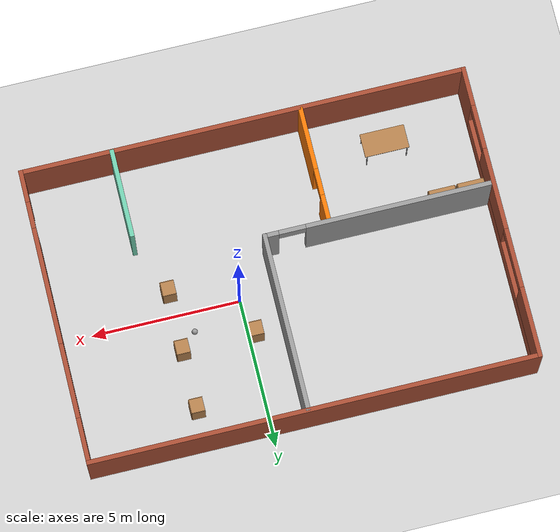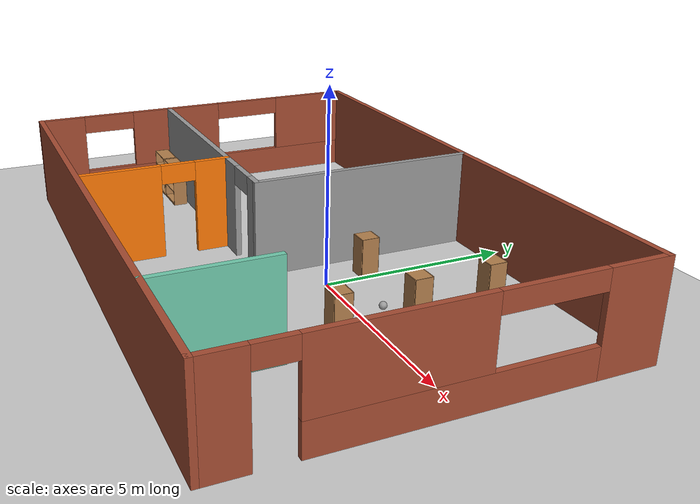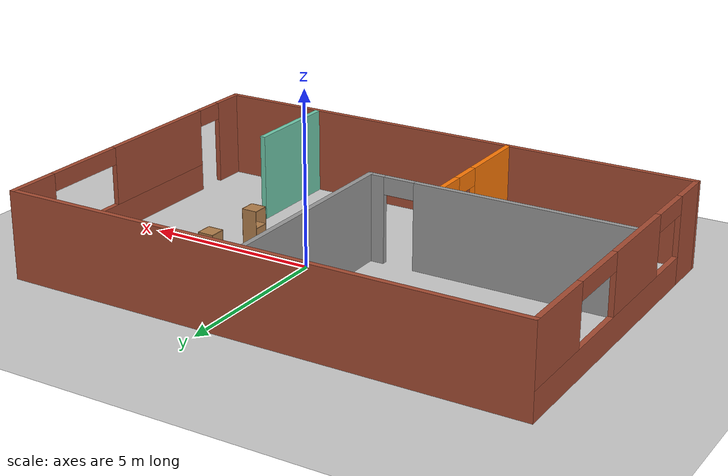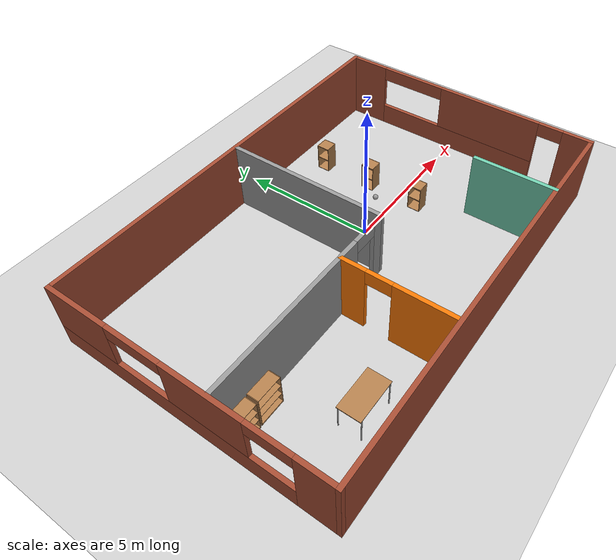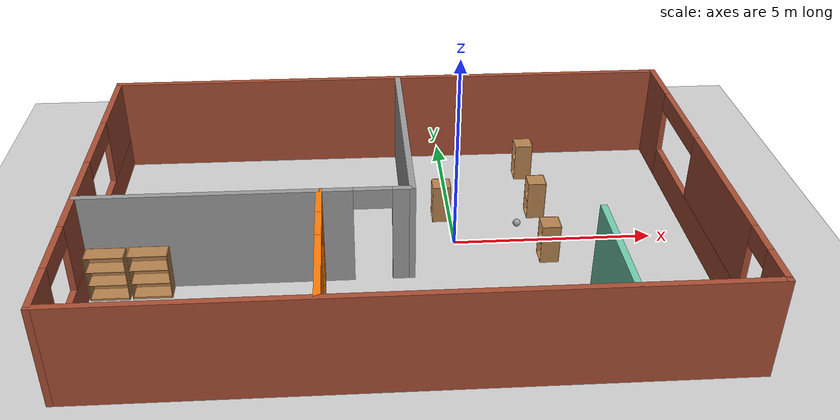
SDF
<sdf version="1.6">
 <world name="default">
  <plugin name="hello" filename="libhello.so"/>
  <light name="sun" type="directional">
   <pose>0 0 10 0 -0 0</pose>
   <diffuse>0.8 0.8 0.8 1</diffuse>
   <specular>0.2 0.2 0.2 1</specular>
   <attenuation>
    <range>1000</range>
    <constant>0.9</constant>
    <linear>0.01</linear>
    <quadratic>0.001</quadratic>
   </attenuation>
   <direction>-0.5 0.1 -0.9</direction>
  </light>
  <model name="ground_plane">
   <static>1</static>
   <link name="link">
    <collision name="collision">
     <geometry><plane><normal>0 0 1</normal><size>100 100</size></plane></geometry>
     <surface><friction><ode><mu>100</mu><mu2>50</mu2></ode></friction></surface>
    </collision>
    <visual name="visual">
     <cast_shadows>0</cast_shadows>
     <geometry><plane><normal>0 0 1</normal><size>100 100</size></plane></geometry>
     <material>
      <script><uri>file://media/materials/scripts/gazebo.material</uri><name>Gazebo/Grey</name></script>
     </material>
    </visual>
   </link>
  </model>
  <gravity>0 0 -9.8</gravity>
  <magnetic_field>6e-06 2.3e-05 -4.2e-05</magnetic_field>
  <atmosphere type="adiabatic"/>
  <physics name="default_physics" default="0" type="ode">
   <max_step_size>0.001</max_step_size>
   <real_time_factor>1</real_time_factor>
   <real_time_update_rate>1000</real_time_update_rate>
  </physics>
  <scene><ambient>0.4 0.4 0.4 1</ambient><background>0.7 0.7 0.7 1</background><shadows>1</shadows></scene>
  <spherical_coordinates>
   <surface_model>EARTH_WGS84</surface_model>
   <latitude_deg>0</latitude_deg>
   <longitude_deg>0</longitude_deg>
   <elevation>0</elevation>
   <heading_deg>0</heading_deg>
  </spherical_coordinates>
  <model name="Building">
   <pose>-1.39723 -0.36677 0 0 -0 0</pose>
   <link name="Wall_15">
    <collision name="Wall_15_Collision">
     <geometry><box><size>15 0.15 2.5</size></box></geometry>
     <pose>0 0 1.25 0 -0 0</pose>
    </collision>
    <visual name="Wall_15_Visual">
     <pose>0 0 1.25 0 -0 0</pose>
     <geometry><box><size>15 0.15 2.5</size></box></geometry>
     <material>
      <script><uri>file://media/materials/scripts/gazebo.material</uri><name>Gazebo/Bricks</name></script>
      <ambient>1 1 1 1</ambient>
     </material>
     <meta><layer>0</layer></meta>
    </visual>
    <pose>0 4.925 0 0 -0 0</pose>
   </link>
   <link name="Wall_16">
    <pose>7.425 0 0 0 0 -1.5708</pose>
    <visual name="Wall_16_Visual_0">
     <pose>-4.22001 0 1.25 0 -0 0</pose>
     <geometry><box><size>1.55997 0.15 2.5</size></box></geometry>
     <material>
      <script><uri>file://media/materials/scripts/gazebo.material</uri><name>Gazebo/Bricks</name></script>
      <ambient>1 1 1 1</ambient>
     </material>
     <meta><layer>0</layer></meta>
    </visual>
    <collision name="Wall_16_Collision_0">
     <geometry><box><size>1.55997 0.15 2.5</size></box></geometry>
     <pose>-4.22001 0 1.25 0 -0 0</pose>
    </collision>
    <visual name="Wall_16_Visual_1">
     <pose>4.45188 0 1.25 0 -0 0</pose>
     <geometry><box><size>1.09624 0.15 2.5</size></box></geometry>
     <material>
      <script><uri>file://media/materials/scripts/gazebo.material</uri><name>Gazebo/Bricks</name></script>
      <ambient>1 1 1 1</ambient>
     </material>
     <meta><layer>0</layer></meta>
    </visual>
    <collision name="Wall_16_Collision_1">
     <geometry><box><size>1.09624 0.15 2.5</size></box></geometry>
     <pose>4.45188 0 1.25 0 -0 0</pose>
    </collision>
    <visual name="Wall_16_Visual_2">
     <pose>-0.218135 0 0.4 0 -0 0</pose>
     <geometry><box><size>6.44378 0.15 0.8</size></box></geometry>
     <material>
      <script><uri>file://media/materials/scripts/gazebo.material</uri><name>Gazebo/Bricks</name></script>
      <ambient>1 1 1 1</ambient>
     </material>
     <meta><layer>0</layer></meta>
    </visual>
    <collision name="Wall_16_Collision_2">
     <geometry><box><size>6.44378 0.15 0.8</size></box></geometry>
     <pose>-0.218135 0 0.4 0 -0 0</pose>
    </collision>
    <visual name="Wall_16_Visual_3">
     <pose>1.03187 0 1.65 0 -0 0</pose>
     <geometry><box><size>3.94378 0.15 1.7</size></box></geometry>
     <material>
      <script><uri>file://media/materials/scripts/gazebo.material</uri><name>Gazebo/Bricks</name></script>
      <ambient>1 1 1 1</ambient>
     </material>
     <meta><layer>0</layer></meta>
    </visual>
    <collision name="Wall_16_Collision_3">
     <geometry><box><size>3.94378 0.15 1.7</size></box></geometry>
     <pose>1.03187 0 1.65 0 -0 0</pose>
    </collision>
    <visual name="Wall_16_Visual_4">
     <pose>3.45376 0 2.25 0 -0 0</pose>
     <geometry><box><size>0.9 0.15 0.5</size></box></geometry>
     <material>
      <script><uri>file://media/materials/scripts/gazebo.material</uri><name>Gazebo/Bricks</name></script>
      <ambient>1 1 1 1</ambient>
     </material>
     <meta><layer>0</layer></meta>
    </visual>
    <collision name="Wall_16_Collision_4">
     <geometry><box><size>0.9 0.15 0.5</size></box></geometry>
     <pose>3.45376 0 2.25 0 -0 0</pose>
    </collision>
    <visual name="Wall_16_Visual_5">
     <pose>-2.19003 0 2.25 0 -0 0</pose>
     <geometry><box><size>2.5 0.15 0.5</size></box></geometry>
     <material>
      <script><uri>file://media/materials/scripts/gazebo.material</uri><name>Gazebo/Bricks</name></script>
      <ambient>1 1 1 1</ambient>
     </material>
     <meta><layer>0</layer></meta>
    </visual>
    <collision name="Wall_16_Collision_5">
     <geometry><box><size>2.5 0.15 0.5</size></box></geometry>
     <pose>-2.19003 0 2.25 0 -0 0</pose>
    </collision>
   </link>
   <link name="Wall_17">
    <collision name="Wall_17_Collision">
     <geometry><box><size>15 0.15 2.5</size></box></geometry>
     <pose>0 0 1.25 0 -0 0</pose>
    </collision>
    <visual name="Wall_17_Visual">
     <pose>0 0 1.25 0 -0 0</pose>
     <geometry><box><size>15 0.15 2.5</size></box></geometry>
     <material>
      <script><uri>file://media/materials/scripts/gazebo.material</uri><name>Gazebo/Bricks</name></script>
      <ambient>1 1 1 1</ambient>
     </material>
     <meta><layer>0</layer></meta>
    </visual>
    <pose>0 -4.925 0 0 -0 3.14159</pose>
   </link>
   <link name="Wall_18">
    <pose>-7.425 0 0 0 -0 1.5708</pose>
    <visual name="Wall_18_Visual_0">
     <pose>-4.32724 0 1.25 0 -0 0</pose>
     <geometry><box><size>1.34552 0.15 2.5</size></box></geometry>
     <material>
      <script><uri>file://media/materials/scripts/gazebo.material</uri><name>Gazebo/Bricks</name></script>
      <ambient>1 1 1 1</ambient>
     </material>
     <meta><layer>0</layer></meta>
    </visual>
    <collision name="Wall_18_Collision_0">
     <geometry><box><size>1.34552 0.15 2.5</size></box></geometry>
     <pose>-4.32724 0 1.25 0 -0 0</pose>
    </collision>
    <visual name="Wall_18_Visual_1">
     <pose>0.672759 0 0.4 0 -0 0</pose>
     <geometry><box><size>8.65448 0.15 0.8</size></box></geometry>
     <material>
      <script><uri>file://media/materials/scripts/gazebo.material</uri><name>Gazebo/Bricks</name></script>
      <ambient>1 1 1 1</ambient>
     </material>
     <meta><layer>0</layer></meta>
    </visual>
    <collision name="Wall_18_Collision_1">
     <geometry><box><size>8.65448 0.15 0.8</size></box></geometry>
     <pose>0.672759 0 0.4 0 -0 0</pose>
    </collision>
    <visual name="Wall_18_Visual_2">
     <pose>-0.765256 0 1.65 0 -0 0</pose>
     <geometry><box><size>2.77845 0.15 1.7</size></box></geometry>
     <material>
      <script><uri>file://media/materials/scripts/gazebo.material</uri><name>Gazebo/Bricks</name></script>
      <ambient>1 1 1 1</ambient>
     </material>
     <meta><layer>0</layer></meta>
    </visual>
    <collision name="Wall_18_Collision_2">
     <geometry><box><size>2.77845 0.15 1.7</size></box></geometry>
     <pose>-0.765256 0 1.65 0 -0 0</pose>
    </collision>
    <visual name="Wall_18_Visual_3">
     <pose>3.81198 0 1.65 0 -0 0</pose>
     <geometry><box><size>2.37603 0.15 1.7</size></box></geometry>
     <material>
      <script><uri>file://media/materials/scripts/gazebo.material</uri><name>Gazebo/Bricks</name></script>
      <ambient>1 1 1 1</ambient>
     </material>
     <meta><layer>0</layer></meta>
    </visual>
    <collision name="Wall_18_Collision_3">
     <geometry><box><size>2.37603 0.15 1.7</size></box></geometry>
     <pose>3.81198 0 1.65 0 -0 0</pose>
    </collision>
    <visual name="Wall_18_Visual_4">
     <pose>-2.90448 0 2.25 0 -0 0</pose>
     <geometry><box><size>1.5 0.15 0.5</size></box></geometry>
     <material>
      <script><uri>file://media/materials/scripts/gazebo.material</uri><name>Gazebo/Bricks</name></script>
      <ambient>1 1 1 1</ambient>
     </material>
     <meta><layer>0</layer></meta>
    </visual>
    <collision name="Wall_18_Collision_4">
     <geometry><box><size>1.5 0.15 0.5</size></box></geometry>
     <pose>-2.90448 0 2.25 0 -0 0</pose>
    </collision>
    <visual name="Wall_18_Visual_5">
     <pose>1.62397 0 2.25 0 -0 0</pose>
     <geometry><box><size>2 0.15 0.5</size></box></geometry>
     <material>
      <script><uri>file://media/materials/scripts/gazebo.material</uri><name>Gazebo/Bricks</name></script>
      <ambient>1 1 1 1</ambient>
     </material>
     <meta><layer>0</layer></meta>
    </visual>
    <collision name="Wall_18_Collision_5">
     <geometry><box><size>2 0.15 0.5</size></box></geometry>
     <pose>1.62397 0 2.25 0 -0 0</pose>
    </collision>
   </link>
   <link name="Wall_23">
    <pose>-3.58227 -0.985767 0 0 -0 0</pose>
    <visual name="Wall_23_Visual_0">
     <pose>-0.718243 0 1.25 0 -0 0</pose>
     <geometry><box><size>6.31351 0.15 2.5</size></box></geometry>
     <material>
      <script><uri>file://media/materials/scripts/gazebo.material</uri><name>Gazebo/Grey</name></script>
      <ambient>1 1 1 1</ambient>
     </material>
     <meta><layer>0</layer></meta>
    </visual>
    <collision name="Wall_23_Collision_0">
     <geometry><box><size>6.31351 0.15 2.5</size></box></geometry>
     <pose>-0.718243 0 1.25 0 -0 0</pose>
    </collision>
    <visual name="Wall_23_Visual_1">
     <pose>3.60676 0 1.25 0 -0 0</pose>
     <geometry><box><size>0.536487 0.15 2.5</size></box></geometry>
     <material>
      <script><uri>file://media/materials/scripts/gazebo.material</uri><name>Gazebo/Grey</name></script>
      <ambient>1 1 1 1</ambient>
     </material>
     <meta><layer>0</layer></meta>
    </visual>
    <collision name="Wall_23_Collision_1">
     <geometry><box><size>0.536487 0.15 2.5</size></box></geometry>
     <pose>3.60676 0 1.25 0 -0 0</pose>
    </collision>
    <visual name="Wall_23_Visual_2">
     <pose>2.88851 0 2.25 0 -0 0</pose>
     <geometry><box><size>0.9 0.15 0.5</size></box></geometry>
     <material>
      <script><uri>file://media/materials/scripts/gazebo.material</uri><name>Gazebo/Grey</name></script>
      <ambient>1 1 1 1</ambient>
     </material>
     <meta><layer>0</layer></meta>
    </visual>
    <collision name="Wall_23_Collision_2">
     <geometry><box><size>0.9 0.15 0.5</size></box></geometry>
     <pose>2.88851 0 2.25 0 -0 0</pose>
    </collision>
   </link>
   <link name="Wall_24">
    <collision name="Wall_24_Collision">
     <geometry><box><size>6 0.15 2.5</size></box></geometry>
     <pose>0 0 1.25 0 -0 0</pose>
    </collision>
    <visual name="Wall_24_Visual">
     <pose>0 0 1.25 0 -0 0</pose>
     <geometry><box><size>6 0.15 2.5</size></box></geometry>
     <material>
      <script><uri>file://media/materials/scripts/gazebo.material</uri><name>Gazebo/Grey</name></script>
      <ambient>1 1 1 1</ambient>
     </material>
     <meta><layer>0</layer></meta>
    </visual>
    <pose>0.217727 1.93923 0 0 -0 1.5708</pose>
   </link>
   <link name="Wall_26">
    <pose>-1.91826 -2.92501 0 0 0 -1.5708</pose>
    <visual name="Wall_26_Visual_0">
     <pose>-1.5205 0 1.25 0 -0 0</pose>
     <geometry><box><size>0.959 0.15 2.5</size></box></geometry>
     <material>
      <script><uri>file://media/materials/scripts/gazebo.material</uri><name>Gazebo/Grey</name></script>
      <ambient>0.996078 0.47451 0.0196078 1</ambient>
     </material>
     <meta><layer>0</layer></meta>
    </visual>
    <collision name="Wall_26_Collision_0">
     <geometry><box><size>0.959 0.15 2.5</size></box></geometry>
     <pose>-1.5205 0 1.25 0 -0 0</pose>
    </collision>
    <visual name="Wall_26_Visual_1">
     <pose>0.9295 0 1.25 0 -0 0</pose>
     <geometry><box><size>2.141 0.15 2.5</size></box></geometry>
     <material>
      <script><uri>file://media/materials/scripts/gazebo.material</uri><name>Gazebo/Grey</name></script>
      <ambient>0.996078 0.47451 0.0196078 1</ambient>
     </material>
     <meta><layer>0</layer></meta>
    </visual>
    <collision name="Wall_26_Collision_1">
     <geometry><box><size>2.141 0.15 2.5</size></box></geometry>
     <pose>0.9295 0 1.25 0 -0 0</pose>
    </collision>
    <visual name="Wall_26_Visual_2">
     <pose>-0.591 0 2.25 0 -0 0</pose>
     <geometry><box><size>0.9 0.15 0.5</size></box></geometry>
     <material>
      <script><uri>file://media/materials/scripts/gazebo.material</uri><name>Gazebo/Grey</name></script>
      <ambient>0.996078 0.47451 0.0196078 1</ambient>
     </material>
     <meta><layer>0</layer></meta>
    </visual>
    <collision name="Wall_26_Collision_2">
     <geometry><box><size>0.9 0.15 0.5</size></box></geometry>
     <pose>-0.591 0 2.25 0 -0 0</pose>
    </collision>
   </link>
   <link name="Wall_28">
    <collision name="Wall_28_Collision">
     <geometry><box><size>3 0.15 2.5</size></box></geometry>
     <pose>0 0 1.25 0 -0 0</pose>
    </collision>
    <visual name="Wall_28_Visual">
     <pose>0 0 1.25 0 -0 0</pose>
     <geometry><box><size>3 0.15 2.5</size></box></geometry>
     <material>
      <script><uri>file://media/materials/scripts/gazebo.material</uri><name>Gazebo/Grey</name></script>
      <ambient>0.435294 0.796078 0.67451 1</ambient>
     </material>
     <meta><layer>0</layer></meta>
    </visual>
    <pose>4.38813 -3.48002 0 0 0 -1.5708</pose>
   </link>
   <static>1</static>
  </model>
  <model name="table">
   <static>1</static>
   <link name="link">
    <collision name="surface">
     <pose>0 0 1 0 -0 0</pose>
     <geometry><box><size>1.5 0.8 0.03</size></box></geometry>
     <surface><friction><ode><mu>0.6</mu><mu2>0.6</mu2></ode></friction></surface>
    </collision>
    <visual name="visual1">
     <pose>0 0 1 0 -0 0</pose>
     <geometry><box><size>1.5 0.8 0.03</size></box></geometry>
     <material>
      <script><uri>file://media/materials/scripts/gazebo.material</uri><name>Gazebo/Wood</name></script>
     </material>
    </visual>
    <collision name="front_left_leg">
     <pose>0.68 0.38 0.5 0 -0 0</pose>
     <geometry><cylinder><radius>0.02</radius><length>1</length></cylinder></geometry>
    </collision>
    <visual name="front_left_leg">
     <pose>0.68 0.38 0.5 0 -0 0</pose>
     <geometry><cylinder><radius>0.02</radius><length>1</length></cylinder></geometry>
     <material>
      <script><uri>file://media/materials/scripts/gazebo.material</uri><name>Gazebo/Grey</name></script>
     </material>
    </visual>
    <collision name="front_right_leg">
     <pose>0.68 -0.38 0.5 0 -0 0</pose>
     <geometry><cylinder><radius>0.02</radius><length>1</length></cylinder></geometry>
    </collision>
    <visual name="front_right_leg">
     <pose>0.68 -0.38 0.5 0 -0 0</pose>
     <geometry><cylinder><radius>0.02</radius><length>1</length></cylinder></geometry>
     <material>
      <script><uri>file://media/materials/scripts/gazebo.material</uri><name>Gazebo/Grey</name></script>
     </material>
    </visual>
    <collision name="back_right_leg">
     <pose>-0.68 -0.38 0.5 0 -0 0</pose>
     <geometry><cylinder><radius>0.02</radius><length>1</length></cylinder></geometry>
    </collision>
    <visual name="back_right_leg">
     <pose>-0.68 -0.38 0.5 0 -0 0</pose>
     <geometry><cylinder><radius>0.02</radius><length>1</length></cylinder></geometry>
     <material>
      <script><uri>file://media/materials/scripts/gazebo.material</uri><name>Gazebo/Grey</name></script>
     </material>
    </visual>
    <collision name="back_left_leg">
     <pose>-0.68 0.38 0.5 0 -0 0</pose>
     <geometry><cylinder><radius>0.02</radius><length>1</length></cylinder></geometry>
    </collision>
    <visual name="back_left_leg">
     <pose>-0.68 0.38 0.5 0 -0 0</pose>
     <geometry><cylinder><radius>0.02</radius><length>1</length></cylinder></geometry>
     <material>
      <script><uri>file://media/materials/scripts/gazebo.material</uri><name>Gazebo/Grey</name></script>
     </material>
    </visual>
   </link>
   <pose>-5.85942 -3.93983 0 0 -0 0</pose>
  </model>
  <model name="bookshelf">
   <static>1</static>
   <link name="link">
    <inertial><mass>1</mass></inertial>
    <collision name="back">
     <pose>0 0.005 0.6 0 -0 0</pose>
     <geometry><box><size>0.9 0.01 1.2</size></box></geometry>
    </collision>
    <visual name="visual1">
     <pose>0 0.005 0.6 0 -0 0</pose>
     <geometry><box><size>0.9 0.01 1.2</size></box></geometry>
     <material>
      <script><uri>file://media/materials/scripts/gazebo.material</uri><name>Gazebo/Wood</name></script>
     </material>
    </visual>
    <collision name="left_side">
     <pose>0.45 -0.195 0.6 0 -0 0</pose>
     <geometry><box><size>0.02 0.4 1.2</size></box></geometry>
    </collision>
    <visual name="visual2">
     <pose>0.45 -0.195 0.6 0 -0 0</pose>
     <geometry><box><size>0.02 0.4 1.2</size></box></geometry>
     <material>
      <script><uri>file://media/materials/scripts/gazebo.material</uri><name>Gazebo/Wood</name></script>
     </material>
    </visual>
    <collision name="right_side">
     <pose>-0.45 -0.195 0.6 0 -0 0</pose>
     <geometry><box><size>0.02 0.4 1.2</size></box></geometry>
    </collision>
    <visual name="visual3">
     <pose>-0.45 -0.195 0.6 0 -0 0</pose>
     <geometry><box><size>0.02 0.4 1.2</size></box></geometry>
     <material>
      <script><uri>file://media/materials/scripts/gazebo.material</uri><name>Gazebo/Wood</name></script>
     </material>
    </visual>
    <collision name="bottom">
     <pose>0 -0.195 0.03 0 -0 0</pose>
     <geometry><box><size>0.88 0.4 0.06</size></box></geometry>
    </collision>
    <visual name="visual4">
     <pose>0 -0.195 0.03 0 -0 0</pose>
     <geometry><box><size>0.88 0.4 0.06</size></box></geometry>
     <material>
      <script><uri>file://media/materials/scripts/gazebo.material</uri><name>Gazebo/Wood</name></script>
     </material>
    </visual>
    <collision name="top">
     <pose>0 -0.195 1.19 0 -0 0</pose>
     <geometry><box><size>0.88 0.4 0.02</size></box></geometry>
    </collision>
    <visual name="visual5">
     <pose>0 -0.195 1.19 0 -0 0</pose>
     <geometry><box><size>0.88 0.4 0.02</size></box></geometry>
     <material>
      <script><uri>file://media/materials/scripts/gazebo.material</uri><name>Gazebo/Wood</name></script>
     </material>
    </visual>
    <collision name="low_shelf">
     <pose>0 -0.195 0.43 0 -0 0</pose>
     <geometry><box><size>0.88 0.4 0.02</size></box></geometry>
    </collision>
    <visual name="visual6">
     <pose>0 -0.195 0.43 0 -0 0</pose>
     <geometry><box><size>0.88 0.4 0.02</size></box></geometry>
     <material>
      <script><uri>file://media/materials/scripts/gazebo.material</uri><name>Gazebo/Wood</name></script>
     </material>
    </visual>
    <collision name="high_shelf">
     <pose>0 -0.195 0.8 0 -0 0</pose>
     <geometry><box><size>0.88 0.4 0.02</size></box></geometry>
    </collision>
    <visual name="visual7">
     <pose>0 -0.195 0.8 0 -0 0</pose>
     <geometry><box><size>0.88 0.4 0.02</size></box></geometry>
     <material>
      <script><uri>file://media/materials/scripts/gazebo.material</uri><name>Gazebo/Wood</name></script>
     </material>
    </visual>
   </link>
   <pose>-8.24703 -1.50181 0 0 -0 0</pose>
  </model>
  <model name="bookshelf_0">
   <static>1</static>
   <link name="link">
    <inertial><mass>1</mass></inertial>
    <collision name="back">
     <pose>0 0.005 0.6 0 -0 0</pose>
     <geometry><box><size>0.9 0.01 1.2</size></box></geometry>
    </collision>
    <visual name="visual1">
     <pose>0 0.005 0.6 0 -0 0</pose>
     <geometry><box><size>0.9 0.01 1.2</size></box></geometry>
     <material>
      <script><uri>file://media/materials/scripts/gazebo.material</uri><name>Gazebo/Wood</name></script>
     </material>
    </visual>
    <collision name="left_side">
     <pose>0.45 -0.195 0.6 0 -0 0</pose>
     <geometry><box><size>0.02 0.4 1.2</size></box></geometry>
    </collision>
    <visual name="visual2">
     <pose>0.45 -0.195 0.6 0 -0 0</pose>
     <geometry><box><size>0.02 0.4 1.2</size></box></geometry>
     <material>
      <script><uri>file://media/materials/scripts/gazebo.material</uri><name>Gazebo/Wood</name></script>
     </material>
    </visual>
    <collision name="right_side">
     <pose>-0.45 -0.195 0.6 0 -0 0</pose>
     <geometry><box><size>0.02 0.4 1.2</size></box></geometry>
    </collision>
    <visual name="visual3">
     <pose>-0.45 -0.195 0.6 0 -0 0</pose>
     <geometry><box><size>0.02 0.4 1.2</size></box></geometry>
     <material>
      <script><uri>file://media/materials/scripts/gazebo.material</uri><name>Gazebo/Wood</name></script>
     </material>
    </visual>
    <collision name="bottom">
     <pose>0 -0.195 0.03 0 -0 0</pose>
     <geometry><box><size>0.88 0.4 0.06</size></box></geometry>
    </collision>
    <visual name="visual4">
     <pose>0 -0.195 0.03 0 -0 0</pose>
     <geometry><box><size>0.88 0.4 0.06</size></box></geometry>
     <material>
      <script><uri>file://media/materials/scripts/gazebo.material</uri><name>Gazebo/Wood</name></script>
     </material>
    </visual>
    <collision name="top">
     <pose>0 -0.195 1.19 0 -0 0</pose>
     <geometry><box><size>0.88 0.4 0.02</size></box></geometry>
    </collision>
    <visual name="visual5">
     <pose>0 -0.195 1.19 0 -0 0</pose>
     <geometry><box><size>0.88 0.4 0.02</size></box></geometry>
     <material>
      <script><uri>file://media/materials/scripts/gazebo.material</uri><name>Gazebo/Wood</name></script>
     </material>
    </visual>
    <collision name="low_shelf">
     <pose>0 -0.195 0.43 0 -0 0</pose>
     <geometry><box><size>0.88 0.4 0.02</size></box></geometry>
    </collision>
    <visual name="visual6">
     <pose>0 -0.195 0.43 0 -0 0</pose>
     <geometry><box><size>0.88 0.4 0.02</size></box></geometry>
     <material>
      <script><uri>file://media/materials/scripts/gazebo.material</uri><name>Gazebo/Wood</name></script>
     </material>
    </visual>
    <collision name="high_shelf">
     <pose>0 -0.195 0.8 0 -0 0</pose>
     <geometry><box><size>0.88 0.4 0.02</size></box></geometry>
    </collision>
    <visual name="visual7">
     <pose>0 -0.195 0.8 0 -0 0</pose>
     <geometry><box><size>0.88 0.4 0.02</size></box></geometry>
     <material>
      <script><uri>file://media/materials/scripts/gazebo.material</uri><name>Gazebo/Wood</name></script>
     </material>
    </visual>
   </link>
   <pose>-7.27009 -1.48817 0 0 -0 0</pose>
  </model>
  <model name="Ball">
   <link name="link_0">
    <inertial>
     <mass>1</mass>
     <inertia><ixx>0.1</ixx><ixy>0</ixy><ixz>0</ixz><iyy>0.1</iyy><iyz>0</iyz><izz>0.1</izz></inertia>
    </inertial>
    <visual name="visual">
     <geometry><sphere><radius>0.1</radius></sphere></geometry>
     <material>
      <lighting>1</lighting>
      <script><uri>file://media/materials/scripts/gazebo.material</uri><name>Gazebo/Grey</name></script>
      <shader type="pixel"><normal_map>__default__</normal_map></shader>
      <ambient>1 1 1 1</ambient>
      <diffuse>1 1 1 1</diffuse>
      <specular>1 1 1 1</specular>
      <emissive>1 1 1 1</emissive>
     </material>
    </visual>
    <collision name="collision">
     <geometry><sphere><radius>0.1</radius></sphere></geometry>
     <surface>
      <friction>
       <ode><mu>1</mu><mu2>1</mu2><fdir1>0 0 0</fdir1><slip1>0</slip1><slip2>0</slip2></ode>
       <torsional>
        <coefficient>1</coefficient>
        <patch_radius>0</patch_radius>
        <surface_radius>0</surface_radius>
        <use_patch_radius>1</use_patch_radius>
        <ode><slip>0</slip></ode>
       </torsional>
      </friction>
      <bounce><restitution_coefficient>0</restitution_coefficient><threshold>1e+06</threshold></bounce>
      <contact>
       <collide_without_contact>0</collide_without_contact>
       <collide_without_contact_bitmask>1</collide_without_contact_bitmask>
       <collide_bitmask>1</collide_bitmask>
       <ode>
        <soft_cfm>0</soft_cfm>
        <soft_erp>0.2</soft_erp>
        <kp>1e+13</kp>
        <kd>1</kd>
        <max_vel>0.01</max_vel>
        <min_depth>0</min_depth>
       </ode>
       <bullet>
        <split_impulse>1</split_impulse>
        <split_impulse_penetration_threshold>-0.01</split_impulse_penetration_threshold>
        <soft_cfm>0</soft_cfm>
        <soft_erp>0.2</soft_erp>
        <kp>1e+13</kp>
        <kd>1</kd>
       </bullet>
      </contact>
     </surface>
    </collision>
   </link>
   <static>0</static>
   <pose>1.68546 0.658465 0.1 0 -0 0</pose>
  </model>
  <plugin name="collision_map_creator" filename="libcollision_map_creator.so"/>
  <model name="cabinet">
   <static>1</static>
   <link name="cabinet_bottom_plate">
    <inertial>
     <pose>0 0 -1 0 -0 0</pose>
     <inertia><ixx>2.05</ixx><ixy>0</ixy><ixz>0</ixz><iyy>2.05</iyy><iyz>0</iyz><izz>2.05</izz></inertia>
     <mass>25</mass>
    </inertial>
    <collision name="cabinet_bottom_plate_geom">
     <pose>0 0 0.01 0 -0 0</pose>
     <geometry><box><size>0.45 0.45 0.02</size></box></geometry>
    </collision>
    <visual name="cabinet_bottom_plate_geom_visual">
     <pose>0 0 0.01 0 -0 0</pose>
     <geometry><box><size>0.45 0.45 0.02</size></box></geometry>
     <material>
      <script><uri>file://media/materials/scripts/gazebo.material</uri><name>Gazebo/Wood</name></script>
     </material>
    </visual>
    <collision name="cabinet_bottom_plate_geom_cabinet_back_plate">
     <pose>0.235 0 0.51 0 -0 0</pose>
     <geometry><box><size>0.02 0.45 1.02</size></box></geometry>
    </collision>
    <visual name="cabinet_bottom_plate_geom_cabinet_back_plate_visual">
     <pose>0.235 0 0.51 0 -0 0</pose>
     <geometry><box><size>0.02 0.45 1.02</size></box></geometry>
     <material>
      <script><uri>file://media/materials/scripts/gazebo.material</uri><name>Gazebo/Wood</name></script>
     </material>
    </visual>
    <collision name="cabinet_bottom_plate_geom_cabinet_left_plate">
     <pose>0 0.235 0.51 0 -0 0</pose>
     <geometry><box><size>0.45 0.02 1.02</size></box></geometry>
    </collision>
    <visual name="cabinet_bottom_plate_geom_cabinet_left_plate_visual">
     <pose>0 0.235 0.51 0 -0 0</pose>
     <geometry><box><size>0.45 0.02 1.02</size></box></geometry>
     <material>
      <script><uri>file://media/materials/scripts/gazebo.material</uri><name>Gazebo/Wood</name></script>
     </material>
    </visual>
    <collision name="cabinet_bottom_plate_geom_cabinet_middle_plate">
     <pose>0 0 0.51 0 -0 0</pose>
     <geometry><box><size>0.45 0.45 0.02</size></box></geometry>
    </collision>
    <visual name="cabinet_bottom_plate_geom_cabinet_middle_plate_visual">
     <pose>0 0 0.51 0 -0 0</pose>
     <geometry><box><size>0.45 0.45 0.02</size></box></geometry>
     <material>
      <script><uri>file://media/materials/scripts/gazebo.material</uri><name>Gazebo/Wood</name></script>
     </material>
    </visual>
    <collision name="cabinet_bottom_plate_geom_cabinet_right_plate">
     <pose>0 -0.235 0.51 0 -0 0</pose>
     <geometry><box><size>0.45 0.02 1.02</size></box></geometry>
    </collision>
    <visual name="cabinet_bottom_plate_geom_cabinet_right_plate_visual">
     <pose>0 -0.235 0.51 0 -0 0</pose>
     <geometry><box><size>0.45 0.02 1.02</size></box></geometry>
     <material>
      <script><uri>file://media/materials/scripts/gazebo.material</uri><name>Gazebo/Wood</name></script>
     </material>
    </visual>
    <collision name="cabinet_bottom_plate_geom_cabinet_top_plate">
     <pose>0 0 1.01 0 -0 0</pose>
     <geometry><box><size>0.45 0.45 0.02</size></box></geometry>
    </collision>
    <visual name="cabinet_bottom_plate_geom_cabinet_top_plate_visual">
     <pose>0 0 1.01 0 -0 0</pose>
     <geometry><box><size>0.45 0.45 0.02</size></box></geometry>
     <material>
      <script><uri>file://media/materials/scripts/gazebo.material</uri><name>Gazebo/Wood</name></script>
     </material>
    </visual>
   </link>
   <pose>2.22504 1.25258 0 0 -0 0</pose>
  </model>
  <model name="cabinet_0">
   <static>1</static>
   <link name="cabinet_bottom_plate">
    <inertial>
     <pose>0 0 -1 0 -0 0</pose>
     <inertia><ixx>2.05</ixx><ixy>0</ixy><ixz>0</ixz><iyy>2.05</iyy><iyz>0</iyz><izz>2.05</izz></inertia>
     <mass>25</mass>
    </inertial>
    <collision name="cabinet_bottom_plate_geom">
     <pose>0 0 0.01 0 -0 0</pose>
     <geometry><box><size>0.45 0.45 0.02</size></box></geometry>
    </collision>
    <visual name="cabinet_bottom_plate_geom_visual">
     <pose>0 0 0.01 0 -0 0</pose>
     <geometry><box><size>0.45 0.45 0.02</size></box></geometry>
     <material>
      <script><uri>file://media/materials/scripts/gazebo.material</uri><name>Gazebo/Wood</name></script>
     </material>
    </visual>
    <collision name="cabinet_bottom_plate_geom_cabinet_back_plate">
     <pose>0.235 0 0.51 0 -0 0</pose>
     <geometry><box><size>0.02 0.45 1.02</size></box></geometry>
    </collision>
    <visual name="cabinet_bottom_plate_geom_cabinet_back_plate_visual">
     <pose>0.235 0 0.51 0 -0 0</pose>
     <geometry><box><size>0.02 0.45 1.02</size></box></geometry>
     <material>
      <script><uri>file://media/materials/scripts/gazebo.material</uri><name>Gazebo/Wood</name></script>
     </material>
    </visual>
    <collision name="cabinet_bottom_plate_geom_cabinet_left_plate">
     <pose>0 0.235 0.51 0 -0 0</pose>
     <geometry><box><size>0.45 0.02 1.02</size></box></geometry>
    </collision>
    <visual name="cabinet_bottom_plate_geom_cabinet_left_plate_visual">
     <pose>0 0.235 0.51 0 -0 0</pose>
     <geometry><box><size>0.45 0.02 1.02</size></box></geometry>
     <material>
      <script><uri>file://media/materials/scripts/gazebo.material</uri><name>Gazebo/Wood</name></script>
     </material>
    </visual>
    <collision name="cabinet_bottom_plate_geom_cabinet_middle_plate">
     <pose>0 0 0.51 0 -0 0</pose>
     <geometry><box><size>0.45 0.45 0.02</size></box></geometry>
    </collision>
    <visual name="cabinet_bottom_plate_geom_cabinet_middle_plate_visual">
     <pose>0 0 0.51 0 -0 0</pose>
     <geometry><box><size>0.45 0.45 0.02</size></box></geometry>
     <material>
      <script><uri>file://media/materials/scripts/gazebo.material</uri><name>Gazebo/Wood</name></script>
     </material>
    </visual>
    <collision name="cabinet_bottom_plate_geom_cabinet_right_plate">
     <pose>0 -0.235 0.51 0 -0 0</pose>
     <geometry><box><size>0.45 0.02 1.02</size></box></geometry>
    </collision>
    <visual name="cabinet_bottom_plate_geom_cabinet_right_plate_visual">
     <pose>0 -0.235 0.51 0 -0 0</pose>
     <geometry><box><size>0.45 0.02 1.02</size></box></geometry>
     <material>
      <script><uri>file://media/materials/scripts/gazebo.material</uri><name>Gazebo/Wood</name></script>
     </material>
    </visual>
    <collision name="cabinet_bottom_plate_geom_cabinet_top_plate">
     <pose>0 0 1.01 0 -0 0</pose>
     <geometry><box><size>0.45 0.45 0.02</size></box></geometry>
    </collision>
    <visual name="cabinet_bottom_plate_geom_cabinet_top_plate_visual">
     <pose>0 0 1.01 0 -0 0</pose>
     <geometry><box><size>0.45 0.45 0.02</size></box></geometry>
     <material>
      <script><uri>file://media/materials/scripts/gazebo.material</uri><name>Gazebo/Wood</name></script>
     </material>
    </visual>
   </link>
   <pose>-0.252826 1.21578 0 0 -0 0</pose>
  </model>
  <model name="cabinet_1">
   <static>1</static>
   <link name="cabinet_bottom_plate">
    <inertial>
     <pose>0 0 -1 0 -0 0</pose>
     <inertia><ixx>2.05</ixx><ixy>0</ixy><ixz>0</ixz><iyy>2.05</iyy><iyz>0</iyz><izz>2.05</izz></inertia>
     <mass>25</mass>
    </inertial>
    <collision name="cabinet_bottom_plate_geom">
     <pose>0 0 0.01 0 -0 0</pose>
     <geometry><box><size>0.45 0.45 0.02</size></box></geometry>
    </collision>
    <visual name="cabinet_bottom_plate_geom_visual">
     <pose>0 0 0.01 0 -0 0</pose>
     <geometry><box><size>0.45 0.45 0.02</size></box></geometry>
     <material>
      <script><uri>file://media/materials/scripts/gazebo.material</uri><name>Gazebo/Wood</name></script>
     </material>
    </visual>
    <collision name="cabinet_bottom_plate_geom_cabinet_back_plate">
     <pose>0.235 0 0.51 0 -0 0</pose>
     <geometry><box><size>0.02 0.45 1.02</size></box></geometry>
    </collision>
    <visual name="cabinet_bottom_plate_geom_cabinet_back_plate_visual">
     <pose>0.235 0 0.51 0 -0 0</pose>
     <geometry><box><size>0.02 0.45 1.02</size></box></geometry>
     <material>
      <script><uri>file://media/materials/scripts/gazebo.material</uri><name>Gazebo/Wood</name></script>
     </material>
    </visual>
    <collision name="cabinet_bottom_plate_geom_cabinet_left_plate">
     <pose>0 0.235 0.51 0 -0 0</pose>
     <geometry><box><size>0.45 0.02 1.02</size></box></geometry>
    </collision>
    <visual name="cabinet_bottom_plate_geom_cabinet_left_plate_visual">
     <pose>0 0.235 0.51 0 -0 0</pose>
     <geometry><box><size>0.45 0.02 1.02</size></box></geometry>
     <material>
      <script><uri>file://media/materials/scripts/gazebo.material</uri><name>Gazebo/Wood</name></script>
     </material>
    </visual>
    <collision name="cabinet_bottom_plate_geom_cabinet_middle_plate">
     <pose>0 0 0.51 0 -0 0</pose>
     <geometry><box><size>0.45 0.45 0.02</size></box></geometry>
    </collision>
    <visual name="cabinet_bottom_plate_geom_cabinet_middle_plate_visual">
     <pose>0 0 0.51 0 -0 0</pose>
     <geometry><box><size>0.45 0.45 0.02</size></box></geometry>
     <material>
      <script><uri>file://media/materials/scripts/gazebo.material</uri><name>Gazebo/Wood</name></script>
     </material>
    </visual>
    <collision name="cabinet_bottom_plate_geom_cabinet_right_plate">
     <pose>0 -0.235 0.51 0 -0 0</pose>
     <geometry><box><size>0.45 0.02 1.02</size></box></geometry>
    </collision>
    <visual name="cabinet_bottom_plate_geom_cabinet_right_plate_visual">
     <pose>0 -0.235 0.51 0 -0 0</pose>
     <geometry><box><size>0.45 0.02 1.02</size></box></geometry>
     <material>
      <script><uri>file://media/materials/scripts/gazebo.material</uri><name>Gazebo/Wood</name></script>
     </material>
    </visual>
    <collision name="cabinet_bottom_plate_geom_cabinet_top_plate">
     <pose>0 0 1.01 0 -0 0</pose>
     <geometry><box><size>0.45 0.45 0.02</size></box></geometry>
    </collision>
    <visual name="cabinet_bottom_plate_geom_cabinet_top_plate_visual">
     <pose>0 0 1.01 0 -0 0</pose>
     <geometry><box><size>0.45 0.45 0.02</size></box></geometry>
     <material>
      <script><uri>file://media/materials/scripts/gazebo.material</uri><name>Gazebo/Wood</name></script>
     </material>
    </visual>
   </link>
   <pose>2.21151 3.25796 0 0 -0 0</pose>
  </model>
  <model name="cabinet_2">
   <static>1</static>
   <link name="cabinet_bottom_plate">
    <inertial>
     <pose>0 0 -1 0 -0 0</pose>
     <inertia><ixx>2.05</ixx><ixy>0</ixy><ixz>0</ixz><iyy>2.05</iyy><iyz>0</iyz><izz>2.05</izz></inertia>
     <mass>25</mass>
    </inertial>
    <collision name="cabinet_bottom_plate_geom">
     <pose>0 0 0.01 0 -0 0</pose>
     <geometry><box><size>0.45 0.45 0.02</size></box></geometry>
    </collision>
    <visual name="cabinet_bottom_plate_geom_visual">
     <pose>0 0 0.01 0 -0 0</pose>
     <geometry><box><size>0.45 0.45 0.02</size></box></geometry>
     <material>
      <script><uri>file://media/materials/scripts/gazebo.material</uri><name>Gazebo/Wood</name></script>
     </material>
    </visual>
    <collision name="cabinet_bottom_plate_geom_cabinet_back_plate">
     <pose>0.235 0 0.51 0 -0 0</pose>
     <geometry><box><size>0.02 0.45 1.02</size></box></geometry>
    </collision>
    <visual name="cabinet_bottom_plate_geom_cabinet_back_plate_visual">
     <pose>0.235 0 0.51 0 -0 0</pose>
     <geometry><box><size>0.02 0.45 1.02</size></box></geometry>
     <material>
      <script><uri>file://media/materials/scripts/gazebo.material</uri><name>Gazebo/Wood</name></script>
     </material>
    </visual>
    <collision name="cabinet_bottom_plate_geom_cabinet_left_plate">
     <pose>0 0.235 0.51 0 -0 0</pose>
     <geometry><box><size>0.45 0.02 1.02</size></box></geometry>
    </collision>
    <visual name="cabinet_bottom_plate_geom_cabinet_left_plate_visual">
     <pose>0 0.235 0.51 0 -0 0</pose>
     <geometry><box><size>0.45 0.02 1.02</size></box></geometry>
     <material>
      <script><uri>file://media/materials/scripts/gazebo.material</uri><name>Gazebo/Wood</name></script>
     </material>
    </visual>
    <collision name="cabinet_bottom_plate_geom_cabinet_middle_plate">
     <pose>0 0 0.51 0 -0 0</pose>
     <geometry><box><size>0.45 0.45 0.02</size></box></geometry>
    </collision>
    <visual name="cabinet_bottom_plate_geom_cabinet_middle_plate_visual">
     <pose>0 0 0.51 0 -0 0</pose>
     <geometry><box><size>0.45 0.45 0.02</size></box></geometry>
     <material>
      <script><uri>file://media/materials/scripts/gazebo.material</uri><name>Gazebo/Wood</name></script>
     </material>
    </visual>
    <collision name="cabinet_bottom_plate_geom_cabinet_right_plate">
     <pose>0 -0.235 0.51 0 -0 0</pose>
     <geometry><box><size>0.45 0.02 1.02</size></box></geometry>
    </collision>
    <visual name="cabinet_bottom_plate_geom_cabinet_right_plate_visual">
     <pose>0 -0.235 0.51 0 -0 0</pose>
     <geometry><box><size>0.45 0.02 1.02</size></box></geometry>
     <material>
      <script><uri>file://media/materials/scripts/gazebo.material</uri><name>Gazebo/Wood</name></script>
     </material>
    </visual>
    <collision name="cabinet_bottom_plate_geom_cabinet_top_plate">
     <pose>0 0 1.01 0 -0 0</pose>
     <geometry><box><size>0.45 0.45 0.02</size></box></geometry>
    </collision>
    <visual name="cabinet_bottom_plate_geom_cabinet_top_plate_visual">
     <pose>0 0 1.01 0 -0 0</pose>
     <geometry><box><size>0.45 0.45 0.02</size></box></geometry>
     <material>
      <script><uri>file://media/materials/scripts/gazebo.material</uri><name>Gazebo/Wood</name></script>
     </material>
    </visual>
   </link>
   <pose>2.22041 -0.757458 0 0 -0 0</pose>
  </model>
 </world>
</sdf>
